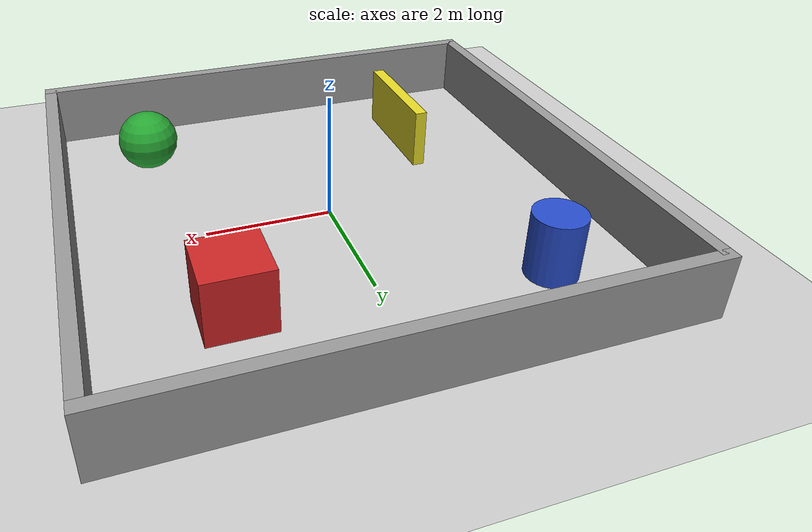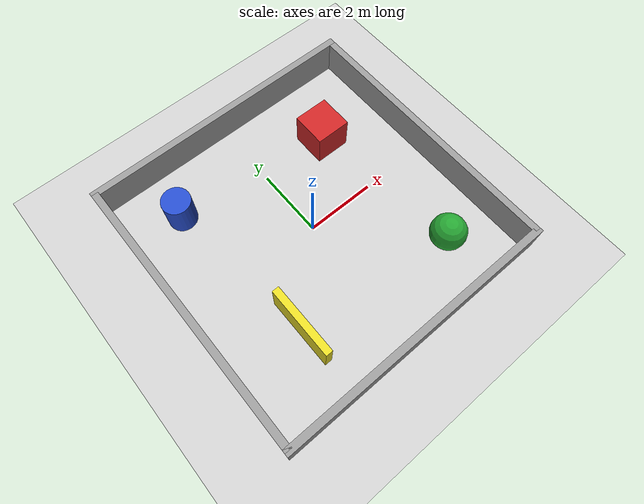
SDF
<?xml version="1.0" ?>
<sdf version="1.6">
  <world name="default">
    <include>
      <uri>model://sun</uri>
    </include>
    <include>
      <uri>model://ground_plane</uri>
    </include>

    <model name='wall_north'>
      <pose>0 4 0.5 0 0 0</pose>
      <static>1</static>
      <link name='link'>
        <collision name='collision'><geometry><box><size>8.2 0.2 1</size></box></geometry></collision>
        <visual name='visual'><geometry><box><size>8.2 0.2 1</size></box></geometry><material><script><name>Gazebo/Grey</name></script></material></visual>
      </link>
    </model>
    <model name='wall_south'>
      <pose>0 -4 0.5 0 0 0</pose>
      <static>1</static>
      <link name='link'>
        <collision name='collision'><geometry><box><size>8.2 0.2 1</size></box></geometry></collision>
        <visual name='visual'><geometry><box><size>8.2 0.2 1</size></box></geometry><material><script><name>Gazebo/Grey</name></script></material></visual>
      </link>
    </model>
    <model name='wall_east'>
      <pose>4 0 0.5 0 0 0</pose>
      <static>1</static>
      <link name='link'>
        <collision name='collision'><geometry><box><size>0.2 8 1</size></box></geometry></collision>
        <visual name='visual'><geometry><box><size>0.2 8 1</size></box></geometry><material><script><name>Gazebo/Grey</name></script></material></visual>
      </link>
    </model>
    <model name='wall_west'>
      <pose>-4 0 0.5 0 0 0</pose>
      <static>1</static>
      <link name='link'>
        <collision name='collision'><geometry><box><size>0.2 8 1</size></box></geometry></collision>
        <visual name='visual'><geometry><box><size>0.2 8 1</size></box></geometry><material><script><name>Gazebo/Grey</name></script></material></visual>
      </link>
    </model>

    <model name='red_box'>
      <pose>2 2 0.5 0 0 0</pose>
      <static>1</static>
      <link name='link'>
        <collision name='collision'><geometry><box><size>1 1 1</size></box></geometry></collision>
        <visual name='visual'><geometry><box><size>1 1 1</size></box></geometry><material><script><name>Gazebo/Red</name></script></material></visual>
      </link>
    </model>

    <model name='blue_cylinder'>
      <pose>-2.5 2.5 0.5 0 0 0</pose>
      <static>1</static>
      <link name='link'>
        <collision name='collision'><geometry><cylinder><radius>0.4</radius><length>1.0</length></cylinder></geometry></collision>
        <visual name='visual'><geometry><cylinder><radius>0.4</radius><length>1.0</length></cylinder></geometry><material><script><name>Gazebo/Blue</name></script></material></visual>
      </link>
    </model>

    <model name='green_sphere'>
      <pose>2.5 -2.5 0.5 0 0 0</pose>
      <static>1</static> <link name='link'>
        <collision name='collision'><geometry><sphere><radius>0.5</radius></sphere></geometry></collision>
        <visual name='visual'><geometry><sphere><radius>0.5</radius></sphere></geometry><material><script><name>Gazebo/Green</name></script></material></visual>
      </link>
    </model>

    <model name='yellow_panel'>
      <pose>-2 -2 0.5 0 0 0</pose>
      <static>1</static>
      <link name='link'>
        <collision name='collision'><geometry><box><size>0.2 2 1</size></box></geometry></collision>
        <visual name='visual'><geometry><box><size>0.2 2 1</size></box></geometry><material><script><name>Gazebo/Yellow</name></script></material></visual>
      </link>
    </model>

  </world>
</sdf>
